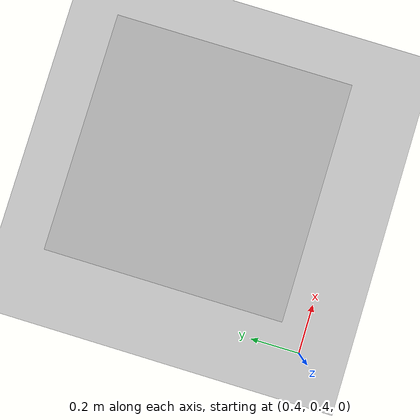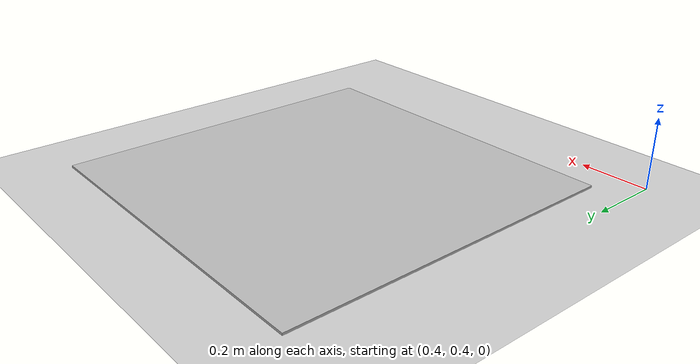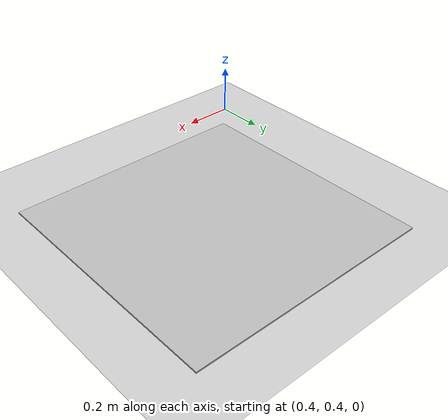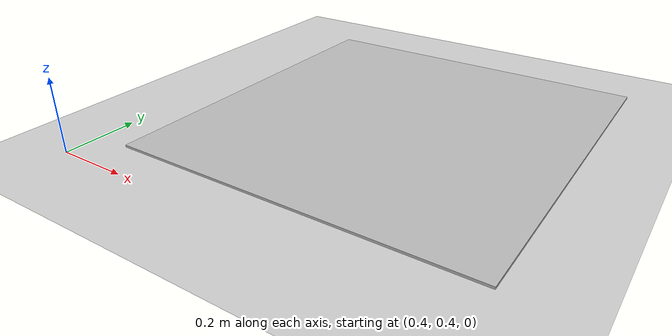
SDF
<?xml version="1.0" ?>
<sdf version="1.5">
  <world name="default">
    <!-- A global light source -->
    <include>
      <uri>model://sun</uri>
    </include>
    <!-- A ground plane -->
    <include>
      <uri>model://ground_plane</uri>
    </include>
    <include>
      <uri>model://amy_mark</uri>
    </include>
    <physics name='default_physics' default='0' type='ode'>
      <gravity>0 0 -9.8066</gravity>
      <ode>
        <solver>
          <type>quick</type>
          <iters>10</iters>
          <sor>1.3</sor>
          <use_dynamic_moi_rescaling>0</use_dynamic_moi_rescaling>
        </solver>
        <constraints>
          <cfm>0</cfm>
          <erp>0.2</erp>
          <contact_max_correcting_vel>100</contact_max_correcting_vel>
          <contact_surface_layer>0.001</contact_surface_layer>
        </constraints>
      </ode>
      <max_step_size>0.002</max_step_size>
      <real_time_factor>1</real_time_factor>
      <real_time_update_rate>500</real_time_update_rate>
      <magnetic_field>6e-06 2.3e-05 -4.2e-05</magnetic_field>
    </physics>
  </world>
</sdf>

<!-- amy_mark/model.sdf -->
<sdf version='1.6'>
  <model name='amy_mark'>
    <model name='amy_mark'>
      <link name='link'>
        <pose frame=''>0.5 0.5 0 0 -0 0</pose>
        <inertial>
          <mass>1.00</mass>
          <inertia>
            <ixx>0</ixx>
            <ixy>0</ixy>
            <ixz>0</ixz>
            <iyy>0</iyy>
            <iyz>0</iyz>
            <izz>0</izz>
          </inertia>
        </inertial>
        <collision name='collision'>
          <geometry>
            <box>
              <size>1 1 .01</size>
            </box>
          </geometry>
        </collision>
        <visual name='visual'>
          <geometry>
            <box>
              <size>1 1 .01</size>
            </box>
          </geometry>
          <material>
            <script>
              <uri>model://amy_mark/materials/scripts</uri>
              <uri>model://amy_mark/materials/textures</uri>
              <name>amy_mark/Diffuse</name>
            </script>
          </material>
        </visual>
      </link>
      <pose frame=''>0.5 0.5 0 0 -0 0</pose>
    </model>
    <static>0</static>
    <allow_auto_disable>1</allow_auto_disable>
  </model>
</sdf>
